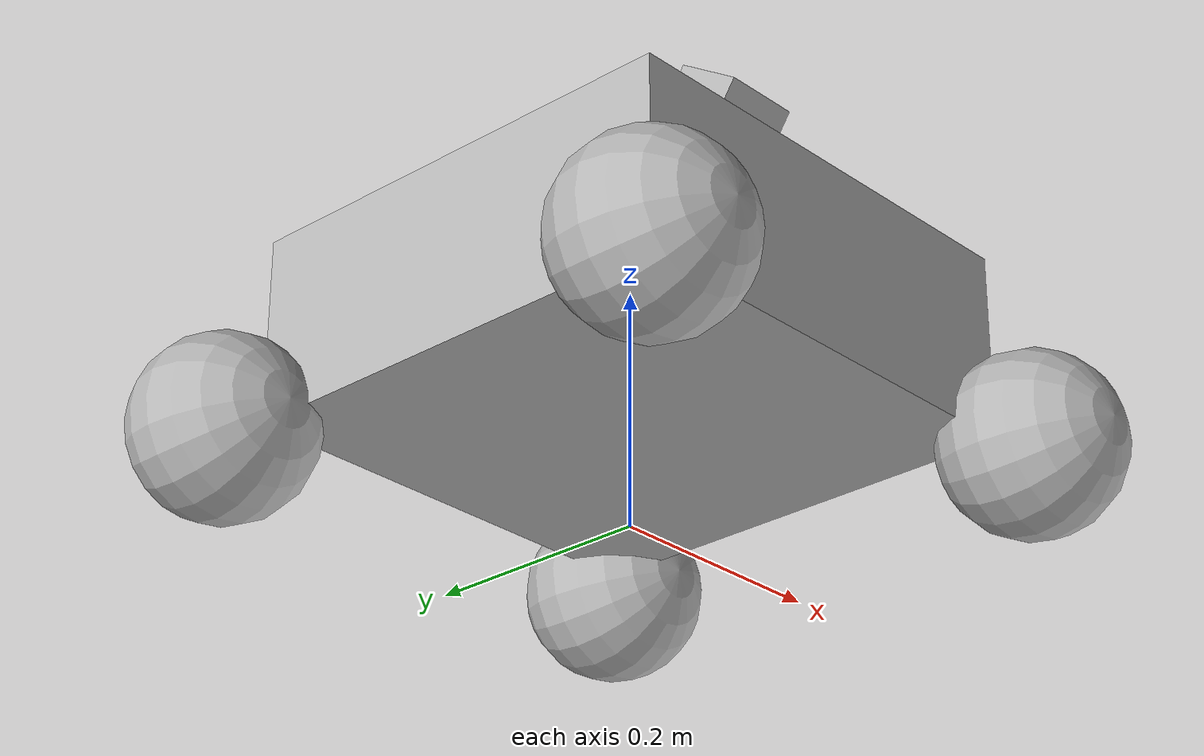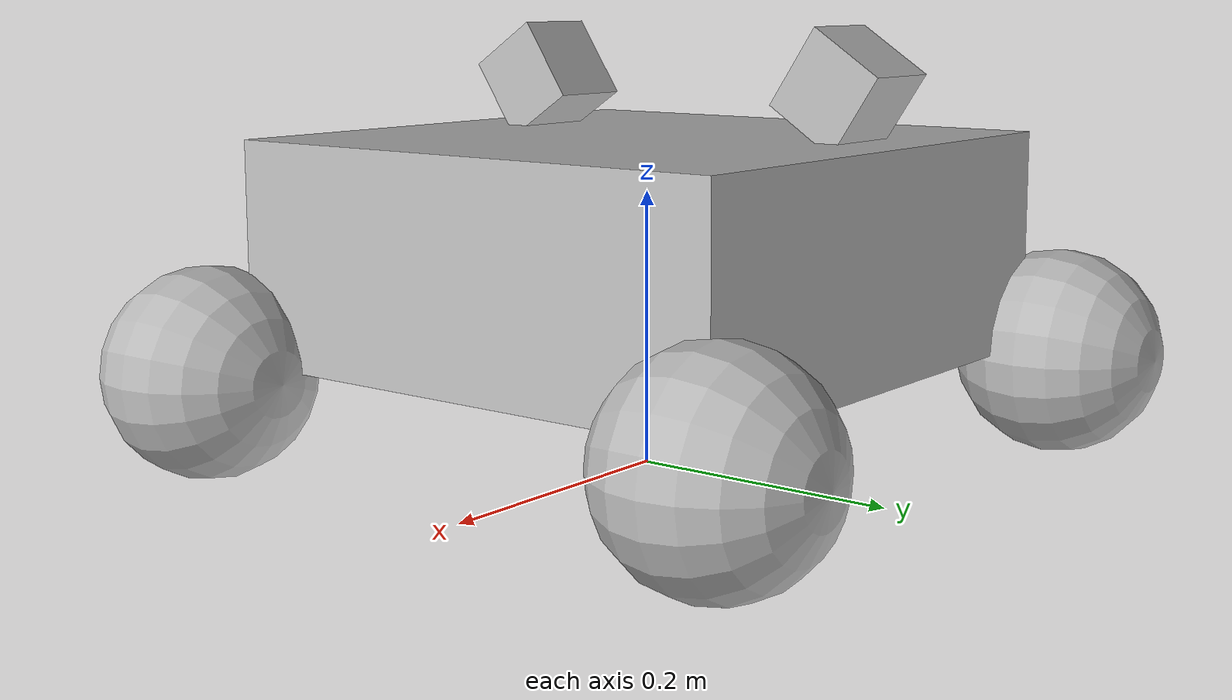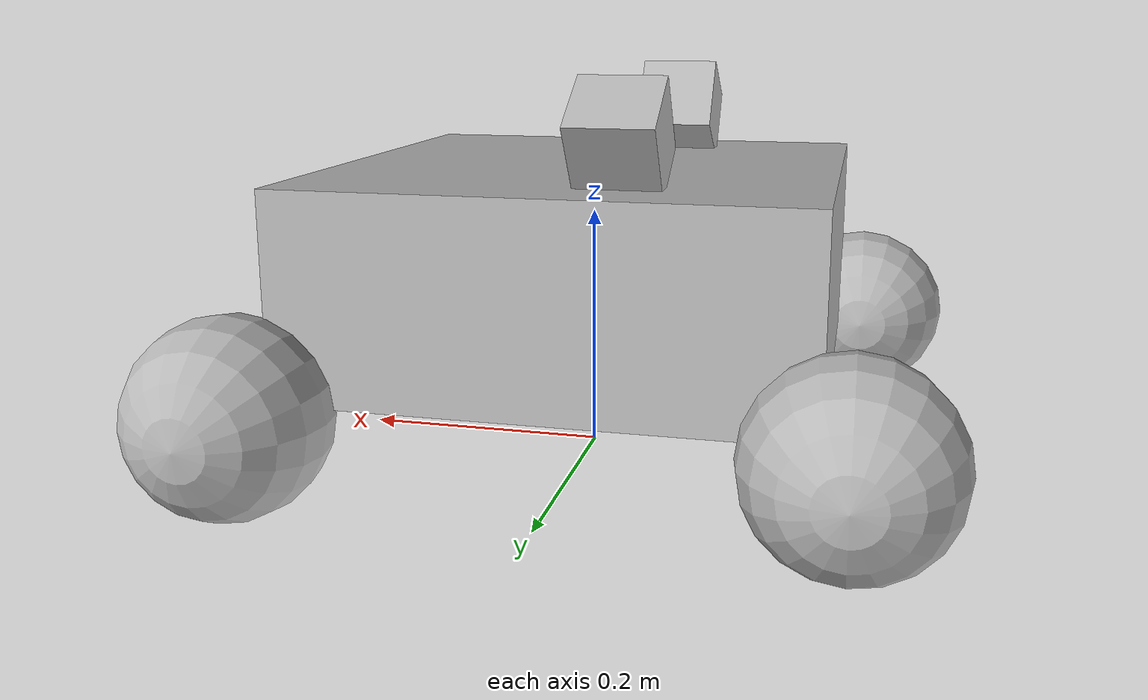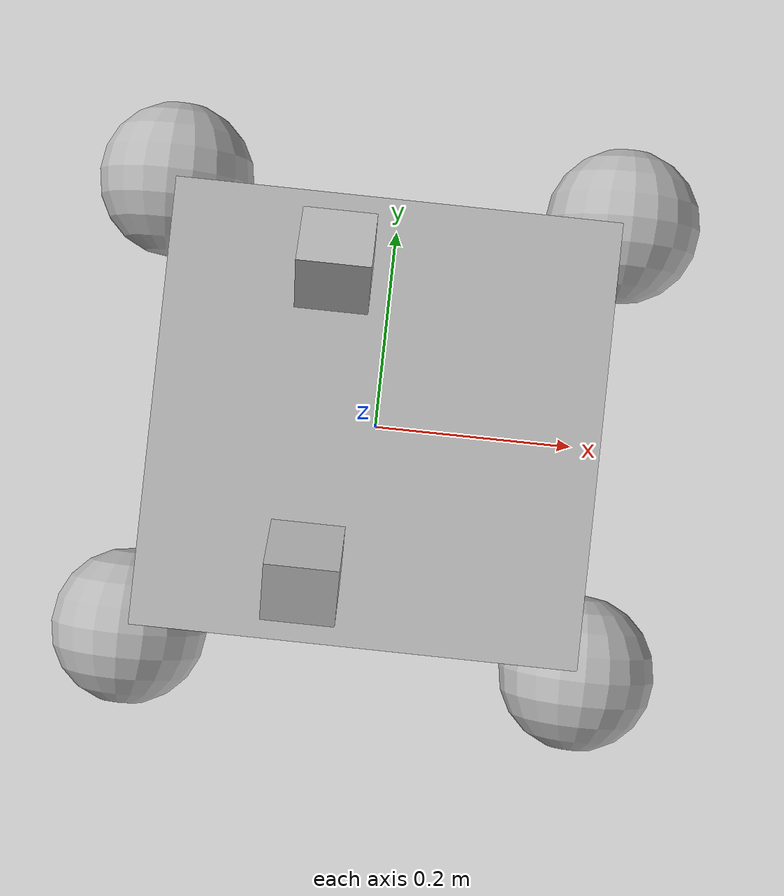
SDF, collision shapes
<?xml version="1.0"?>
<sdf version="1.7">
  <model name="sentry" xmlns:gz="http://gazebosim.org/schema">
    <self_collide>false</self_collide>

    <link name="base_link">
      <pose>0 0 0.20 0 0 0</pose>
      <inertial>
        <mass>35.0</mass>
        <inertia><ixx>0.583333</ixx><iyy>0.583333</iyy><izz>0.933333</izz></inertia>
      </inertial>
      <collision name="base_collision">
        <pose>0 0 -0.04 0 0 0</pose>
        <geometry><box><size>0.40 0.40 0.16</size></box></geometry>
        <surface>
          <friction><ode><mu>0.8</mu><mu2>0.8</mu2></ode></friction>
          <contact><ode><kp>1000000</kp><kd>100</kd></ode></contact>
        </surface>
      </collision>
      <visual name="base_visual">
        <!-- Scale only Z: the PB chassis spans exactly 0.00..0.24 m in world Z. -->
        <pose>0 0 -0.175736785 0 0 0</pose>
        <geometry><mesh><uri>model://pb2025_visuals/meshes/chassis_base.dae</uri><scale>1 1 0.852565282</scale></mesh></geometry>
      </visual>
    </link>

    <link name="front_left_wheel">
      <pose>0.22 0.22 0.076 -1.57079632679 0 0</pose>
      <inertial><mass>0.6</mass><inertia><ixx>0.0009464</ixx><iyy>0.0009464</iyy><izz>0.0017328</izz></inertia></inertial>
      <collision name="collision">
        <geometry><sphere><radius>0.076</radius></sphere></geometry>
        <surface><friction><ode><mu>1.0</mu><mu2>0.2</mu2><fdir1 gz:expressed_in="base_link">1 -1 0</fdir1></ode></friction></surface>
      </collision>
      <visual name="visual"><geometry><cylinder><radius>0.076</radius><length>0.04</length></cylinder></geometry></visual>
    </link>
    <link name="front_right_wheel">
      <pose>0.22 -0.22 0.076 -1.57079632679 0 0</pose>
      <inertial><mass>0.6</mass><inertia><ixx>0.0009464</ixx><iyy>0.0009464</iyy><izz>0.0017328</izz></inertia></inertial>
      <collision name="collision">
        <geometry><sphere><radius>0.076</radius></sphere></geometry>
        <surface><friction><ode><mu>1.0</mu><mu2>0.2</mu2><fdir1 gz:expressed_in="base_link">1 1 0</fdir1></ode></friction></surface>
      </collision>
      <visual name="visual"><geometry><cylinder><radius>0.076</radius><length>0.04</length></cylinder></geometry></visual>
    </link>
    <link name="rear_left_wheel">
      <pose>-0.22 0.22 0.076 -1.57079632679 0 0</pose>
      <inertial><mass>0.6</mass><inertia><ixx>0.0009464</ixx><iyy>0.0009464</iyy><izz>0.0017328</izz></inertia></inertial>
      <collision name="collision">
        <geometry><sphere><radius>0.076</radius></sphere></geometry>
        <surface><friction><ode><mu>1.0</mu><mu2>0.2</mu2><fdir1 gz:expressed_in="base_link">1 1 0</fdir1></ode></friction></surface>
      </collision>
      <visual name="visual"><geometry><cylinder><radius>0.076</radius><length>0.04</length></cylinder></geometry></visual>
    </link>
    <link name="rear_right_wheel">
      <pose>-0.22 -0.22 0.076 -1.57079632679 0 0</pose>
      <inertial><mass>0.6</mass><inertia><ixx>0.0009464</ixx><iyy>0.0009464</iyy><izz>0.0017328</izz></inertia></inertial>
      <collision name="collision">
        <geometry><sphere><radius>0.076</radius></sphere></geometry>
        <surface><friction><ode><mu>1.0</mu><mu2>0.2</mu2><fdir1 gz:expressed_in="base_link">1 -1 0</fdir1></ode></friction></surface>
      </collision>
      <visual name="visual"><geometry><cylinder><radius>0.076</radius><length>0.04</length></cylinder></geometry></visual>
    </link>

    <joint name="front_left_joint" type="revolute"><parent>base_link</parent><child>front_left_wheel</child><axis><xyz>0 0 1</xyz><limit><effort>50</effort><velocity>60</velocity></limit><dynamics><damping>0.05</damping></dynamics></axis></joint>
    <joint name="front_right_joint" type="revolute"><parent>base_link</parent><child>front_right_wheel</child><axis><xyz>0 0 1</xyz><limit><effort>50</effort><velocity>60</velocity></limit><dynamics><damping>0.05</damping></dynamics></axis></joint>
    <joint name="rear_left_joint" type="revolute"><parent>base_link</parent><child>rear_left_wheel</child><axis><xyz>0 0 1</xyz><limit><effort>50</effort><velocity>60</velocity></limit><dynamics><damping>0.05</damping></dynamics></axis></joint>
    <joint name="rear_right_joint" type="revolute"><parent>base_link</parent><child>rear_right_wheel</child><axis><xyz>0 0 1</xyz><limit><effort>50</effort><velocity>60</velocity></limit><dynamics><damping>0.05</damping></dynamics></axis></joint>

    <!-- Level common LiDAR/IMU frame used by Point-LIO after both sensors are fused. -->
    <link name="sim_lidar">
      <pose>0 -0.2 0.3 0 0 0</pose>
      <inertial><mass>0.01</mass><inertia><ixx>0.000001</ixx><iyy>0.000001</iyy><izz>0.000001</izz></inertia></inertial>
      <sensor name="sim_imu" type="imu"><topic>/sim/imu</topic><update_rate>200</update_rate><always_on>true</always_on><gz_frame_id>sim_lidar</gz_frame_id></sensor>
    </link>
    <joint name="sim_lidar_joint" type="fixed"><parent>base_link</parent><child>sim_lidar</child></joint>

    <link name="sim_lidar_left">
      <pose>-0.0496 0.136 0.274965449328 -0.5835987756 0 0</pose>
      <inertial><mass>0.265</mass><inertia><ixx>0.000173</ixx><iyy>0.000173</iyy><izz>0.000187</izz></inertia></inertial>
      <collision name="collision"><geometry><box><size>0.065 0.060 0.065</size></box></geometry></collision>
      <visual name="visual"><pose>0 0 0 0 0 3.14159265359</pose><geometry><mesh><uri>model://mid360/meshes/mid360.dae</uri></mesh></geometry></visual>
      <sensor name="sim_lidar_left_front" type="gpu_lidar">
        <pose>0 0 0.03 0 0 0</pose>
        <topic>/sim/lidar/left/front</topic><update_rate>10</update_rate><always_on>true</always_on><visualize>false</visualize>
        <gz_frame_id>sim_lidar_left</gz_frame_id>
        <lidar>
          <scan><horizontal><samples>360</samples><resolution>1</resolution><min_angle>-1.57079632679</min_angle><max_angle>1.57079632679</max_angle></horizontal><vertical><samples>120</samples><resolution>1</resolution><min_angle>-0.1274090354</min_angle><max_angle>0.9128076904</max_angle></vertical></scan>
          <range><min>0.10</min><max>40.0</max><resolution>0.01</resolution></range>
          <noise><type>gaussian</type><mean>0.0</mean><stddev>0.0</stddev></noise>
        </lidar>
      </sensor>
      <sensor name="sim_lidar_left_rear" type="gpu_lidar">
        <pose>0 0 0.03 0 0 3.14159265359</pose>
        <topic>/sim/lidar/left/rear</topic><update_rate>10</update_rate><always_on>true</always_on><visualize>false</visualize>
        <gz_frame_id>sim_lidar_left</gz_frame_id>
        <lidar>
          <scan><horizontal><samples>360</samples><resolution>1</resolution><min_angle>-1.57079632679</min_angle><max_angle>1.57079632679</max_angle></horizontal><vertical><samples>120</samples><resolution>1</resolution><min_angle>-0.1274090354</min_angle><max_angle>0.9128076904</max_angle></vertical></scan>
          <range><min>0.10</min><max>40.0</max><resolution>0.01</resolution></range>
          <noise><type>gaussian</type><mean>0.0</mean><stddev>0.0</stddev></noise>
        </lidar>
      </sensor>
    </link>
    <joint name="sim_lidar_left_joint" type="fixed"><parent>base_link</parent><child>sim_lidar_left</child></joint>

    <link name="sim_lidar_right">
      <pose>-0.0496 -0.136 0.274965449328 0.5835987756 0 0</pose>
      <inertial><mass>0.265</mass><inertia><ixx>0.000173</ixx><iyy>0.000173</iyy><izz>0.000187</izz></inertia></inertial>
      <collision name="collision"><geometry><box><size>0.065 0.060 0.065</size></box></geometry></collision>
      <visual name="visual"><pose>0 0 0 0 0 3.14159265359</pose><geometry><mesh><uri>model://mid360/meshes/mid360.dae</uri></mesh></geometry></visual>
      <sensor name="sim_lidar_right_front" type="gpu_lidar">
        <pose>0 0 0.03 0 0 0</pose>
        <topic>/sim/lidar/right/front</topic><update_rate>10</update_rate><always_on>true</always_on><visualize>false</visualize>
        <gz_frame_id>sim_lidar_right</gz_frame_id>
        <lidar>
          <scan><horizontal><samples>360</samples><resolution>1</resolution><min_angle>-1.57079632679</min_angle><max_angle>1.57079632679</max_angle></horizontal><vertical><samples>120</samples><resolution>1</resolution><min_angle>-0.1274090354</min_angle><max_angle>0.9128076904</max_angle></vertical></scan>
          <range><min>0.10</min><max>40.0</max><resolution>0.01</resolution></range>
          <noise><type>gaussian</type><mean>0.0</mean><stddev>0.0</stddev></noise>
        </lidar>
      </sensor>
      <sensor name="sim_lidar_right_rear" type="gpu_lidar">
        <pose>0 0 0.03 0 0 3.14159265359</pose>
        <topic>/sim/lidar/right/rear</topic><update_rate>10</update_rate><always_on>true</always_on><visualize>false</visualize>
        <gz_frame_id>sim_lidar_right</gz_frame_id>
        <lidar>
          <scan><horizontal><samples>360</samples><resolution>1</resolution><min_angle>-1.57079632679</min_angle><max_angle>1.57079632679</max_angle></horizontal><vertical><samples>120</samples><resolution>1</resolution><min_angle>-0.1274090354</min_angle><max_angle>0.9128076904</max_angle></vertical></scan>
          <range><min>0.10</min><max>40.0</max><resolution>0.01</resolution></range>
          <noise><type>gaussian</type><mean>0.0</mean><stddev>0.0</stddev></noise>
        </lidar>
      </sensor>
    </link>
    <joint name="sim_lidar_right_joint" type="fixed"><parent>base_link</parent><child>sim_lidar_right</child></joint>

    <!-- Wrench-based omni drive used by the original simulator; subscribes to sentry/cmd_vel. -->
    <plugin filename="MecanumDrive2" name="gz::sim::systems::MecanumDrive2">
      <chassis_link>base_link</chassis_link>
      <front_right_joint>front_right_joint</front_right_joint><front_left_joint>front_left_joint</front_left_joint>
      <rear_right_joint>rear_right_joint</rear_right_joint><rear_left_joint>rear_left_joint</rear_left_joint>
    </plugin>
    <plugin filename="gz-sim-odometry-publisher-system" name="gz::sim::systems::OdometryPublisher">
      <odom_frame>sentry/odom</odom_frame><robot_base_frame>sentry/base_link</robot_base_frame>
      <dimensions>3</dimensions><odom_publish_frequency>100</odom_publish_frequency>
      <odom_topic>/sentry/ground_truth_odometry</odom_topic><tf_topic>/sentry/ground_truth_tf</tf_topic>
    </plugin>
  </model>
</sdf>
